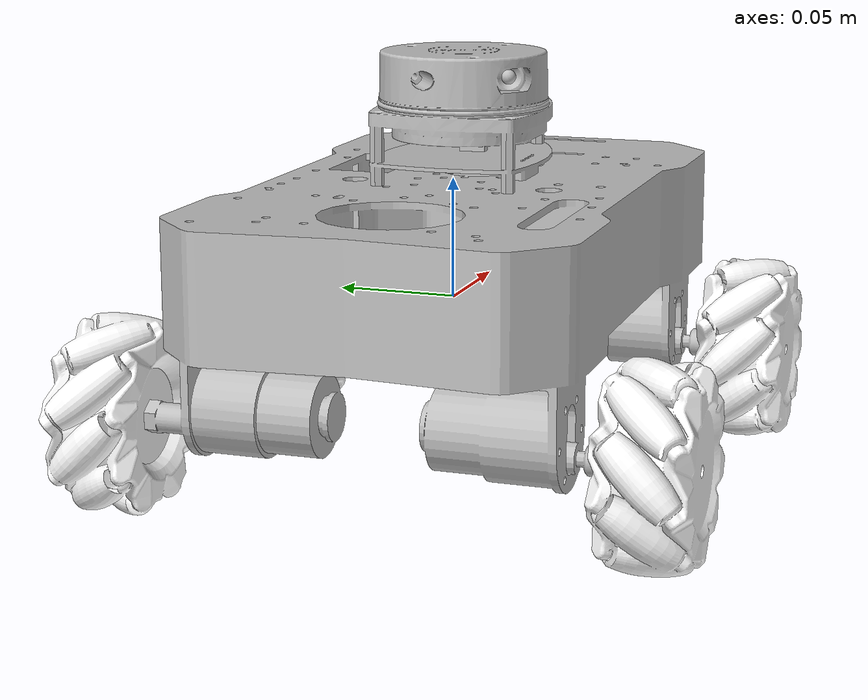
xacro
<?xml version="1.0"?>
<robot name="robmini" xmlns:xacro="http://www.ros.org/wiki/xacro">
    <!-- 添加参数声明 -->
    <xacro:arg name="prefix" default=""/>
    <xacro:arg name="use_mock" default="false"/>

    <!-- 获取参数值 -->
    <xacro:property name="prefix" value="$(arg prefix)" />
    <xacro:property name="use_mock" value="$(arg use_mock)"/>

    <!-- TF 前缀处理保持不变 -->
    <xacro:if value="${prefix == '/' or prefix == '' or prefix == ' '}">
        <xacro:property name="tf_prefix" value="" />
    </xacro:if>
    <xacro:unless value="${prefix == '/' or prefix == '' or prefix == ' '}">
        <xacro:property name="tf_prefix" value="${prefix}/" />
    </xacro:unless>

    <!-- 使用传统 find 语法 -->
    <xacro:include filename="$(find robmini_description)/urdf/robmini.urdf.xacro" />
    <xacro:include filename="$(find robmini_description)/urdf/lidar_gazebo.xacro" />
    <xacro:include filename="$(find robmini_description)/urdf/robmini.ros2_control.xacro" />
    <!-- 宏调用保持不变 -->
    <xacro:robmini_ros2_control
      use_mock_bool="${str(use_mock).lower() in ['true','1','yes','on']}"/>
</robot>

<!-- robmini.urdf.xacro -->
<robot xmlns:xacro="http://www.ros.org/wiki/xacro">

  <link
    name="${tf_prefix}base_link">
    <inertial>
      <origin
        xyz="0.00642718102494587 0.000182152311766697 0.0006273474275044"
        rpy="0 0 0" />
      <mass
        value="0.566394170985771" />
      <inertia
        ixx="0.00105406060554873"
        ixy="1.36846218301613E-05"
        ixz="-7.10562527190778E-06"
        iyy="0.00239067878191228"
        iyz="4.45402070926371E-07"
        izz="0.00328565602241862" />
    </inertial>
    <visual>
      <origin
        xyz="0 0 0"
        rpy="0 0 0" />
      <geometry>
        <mesh
          filename="package://robmini_description/meshes/base_link.STL" />
      </geometry>
      <material
        name="">
        <color
          rgba="0.752941176470588 0.752941176470588 0.752941176470588 1" />
      </material>
    </visual>
    <collision>
      <origin
        xyz="0 0 0"
        rpy="0 0 0" />
      <geometry>
        <mesh
          filename="package://robmini_description/meshes/base_link.STL" />
      </geometry>
    </collision>
  </link>
  <link
    name="${tf_prefix}front_left_wheel_link">
    <inertial>
      <origin
        xyz="-0.090148 -0.1069 0.045868"
        rpy="0 0 0" />
      <mass
        value="0.63948" />
      <inertia
        ixx="0.0025437"
        ixy="2.7123E-05"
        ixz="-0.00010496"
        iyy="0.0053311"
        iyz="1.0534E-05"
        izz="0.006151" />
    </inertial>
    <visual>
      <origin
        xyz="0 0 0"
        rpy="0 0 0" />
      <geometry>
        <mesh
          filename="package://robmini_description/meshes/left_front_wheel_link.STL" />
      </geometry>
      <material
        name="">
        <color
          rgba="1 1 1 1" />
      </material>
    </visual>
    <collision>
      <origin
        xyz="0 0 0"
        rpy="0 0 0" />
      <geometry>
        <mesh
          filename="package://robmini_description/meshes/left_front_wheel_link.STL" />
      </geometry>
    </collision>
  </link>
  <joint
    name="front_left_wheel_joint"
    type="continuous">
    <origin
      xyz="0.098716 0.107 -0.037"
      rpy="0 0 0" />
    <parent
      link="${tf_prefix}base_link" />
    <child
      link="${tf_prefix}front_left_wheel_link" />
    <axis
      xyz="0 1 0" />
  </joint>
  <link
    name="${tf_prefix}rear_left_wheel_link">
    <inertial>
      <origin
        xyz="0.094852 -0.1069 0.045868"
        rpy="0 0 0" />
      <mass
        value="0.63948" />
      <inertia
        ixx="0.0025437"
        ixy="2.7123E-05"
        ixz="-0.00010496"
        iyy="0.0053311"
        iyz="1.0534E-05"
        izz="0.006151" />
    </inertial>
    <visual>
      <origin
        xyz="0 0 0"
        rpy="0 0 0" />
      <geometry>
        <mesh
          filename="package://robmini_description/meshes/left_back_wheel_link.STL" />
      </geometry>
      <material
        name="">
        <color
          rgba="1 1 1 1" />
      </material>
    </visual>
    <collision>
      <origin
        xyz="0 0 0"
        rpy="0 0 0" />
      <geometry>
        <mesh
          filename="package://robmini_description/meshes/left_back_wheel_link.STL" />
      </geometry>
    </collision>
  </link>
  <joint
    name="rear_left_wheel_joint"
    type="continuous">
    <origin
      xyz="-0.086284 0.107 -0.037"
      rpy="0 0 0" />
    <parent
      link="${tf_prefix}base_link" />
    <child
      link="${tf_prefix}rear_left_wheel_link" />
    <axis
      xyz="0 1 0" />
  </joint>
  <link
    name="${tf_prefix}rear_right_wheel_link">
    <inertial>
      <origin
        xyz="0.094852 0.1071 0.045868"
        rpy="0 0 0" />
      <mass
        value="0.63948" />
      <inertia
        ixx="0.0025437"
        ixy="2.7123E-05"
        ixz="-0.00010496"
        iyy="0.0053311"
        iyz="1.0534E-05"
        izz="0.006151" />
    </inertial>
    <visual>
      <origin
        xyz="0 0 0"
        rpy="0 0 0" />
      <geometry>
        <mesh
          filename="package://robmini_description/meshes/right_back_wheel_link.STL" />
      </geometry>
      <material
        name="">
        <color
          rgba="1 1 1 1" />
      </material>
    </visual>
    <collision>
      <origin
        xyz="0 0 0"
        rpy="0 0 0" />
      <geometry>
        <mesh
          filename="package://robmini_description/meshes/right_back_wheel_link.STL" />
      </geometry>
    </collision>
  </link>
  <joint
    name="rear_right_wheel_joint"
    type="continuous">
    <origin
      xyz="-0.086284 -0.107 -0.037"
      rpy="0 0 0" />
    <parent
      link="${tf_prefix}base_link" />
    <child
      link="${tf_prefix}rear_right_wheel_link" />
    <axis
      xyz="0 1 0" />
  </joint>
  <link
    name="${tf_prefix}front_right_wheel_link">
    <inertial>
      <origin
        xyz="-0.090148 0.1071 0.045868"
        rpy="0 0 0" />
      <mass
        value="0.63948" />
      <inertia
        ixx="0.0025437"
        ixy="2.7123E-05"
        ixz="-0.00010496"
        iyy="0.0053311"
        iyz="1.0534E-05"
        izz="0.006151" />
    </inertial>
    <visual>
      <origin
        xyz="0 0 0"
        rpy="0 0 0" />
      <geometry>
        <mesh
          filename="package://robmini_description/meshes/right_front_wheel_link.STL" />
      </geometry>
      <material
        name="">
        <color
          rgba="1 1 1 1" />
      </material>
    </visual>
    <collision>
      <origin
        xyz="0 0 0"
        rpy="0 0 0" />
      <geometry>
        <mesh
          filename="package://robmini_description/meshes/right_front_wheel_link.STL" />
      </geometry>
    </collision>
  </link>
  <joint
    name="front_right_wheel_joint"
    type="continuous">
    <origin
      xyz="0.098716 -0.107 -0.037"
      rpy="0 0 0" />
    <parent
      link="${tf_prefix}base_link" />
    <child
      link="${tf_prefix}front_right_wheel_link" />
    <axis
      xyz="0 1 0" />
  </joint>
  <link
    name="${tf_prefix}laser">
    <inertial>
      <origin
        xyz="0.01206 -0.00053201 -0.0083649"
        rpy="0 0 0" />
      <mass
        value="0.073085" />
      <inertia
        ixx="1.9581E-05"
        ixy="-1.04E-07"
        ixz="-4.284E-07"
        iyy="2.4125E-05"
        iyz="9.3841E-09"
        izz="4.1419E-05" />
    </inertial>
    <visual>
      <origin
        xyz="0 0 0"
        rpy="0 0 0" />
      <geometry>
        <mesh
          filename="package://robmini_description/meshes/lidar_link.STL" />
      </geometry>
      <material
        name="">
        <color
          rgba="0.75294 0.75294 0.75294 1" />
      </material>
    </visual>
    <collision>
      <origin
        xyz="0 0 0"
        rpy="0 0 0" />
      <geometry>
        <mesh
          filename="package://robmini_description/meshes/lidar_link.STL" />
      </geometry>
    </collision>
  </link>
  <joint
    name="lidar_joint"
    type="fixed">
    <origin
      xyz="0.013095 0 0.0811"
      rpy="0 0 0" />
    <parent
      link="${tf_prefix}base_link" />
    <child
      link="${tf_prefix}laser" />
    <axis
      xyz="0 0 0" />
  </joint>

  <gazebo reference="${tf_prefix}base_link">
    <material>Gazebo/Grey</material>
  </gazebo>
  <gazebo reference="${tf_prefix}front_left_wheel_link">
    <collision>
        <surface>
        <friction>
            <ode>
            <mu>1.5</mu>
            <mu2>1.2</mu2>
            <fdir1>1 -1 0</fdir1>
            </ode>
        </friction>
        </surface>
    </collision>
  </gazebo>
  <gazebo reference="${tf_prefix}rear_left_wheel_link">
    <collision>
        <surface>
        <friction>
            <ode>
            <mu>1.5</mu>
            <mu2>1.2</mu2>
            <fdir1>1 1 0</fdir1>
            </ode>
        </friction>
        </surface>
    </collision>
  </gazebo>
  <gazebo reference="${tf_prefix}front_right_wheel_link">
    <collision>
        <surface>
        <friction>
            <ode>
            <mu>1.5</mu>
            <mu2>1.2</mu2>
            <fdir1>1 1 0</fdir1>
            </ode>
        </friction>
        </surface>
    </collision>
  </gazebo>
  <gazebo reference="${tf_prefix}rear_right_wheel_link">
    <collision>
        <surface>
        <friction>
            <ode>
            <mu>1.5</mu>
            <mu2>1.2</mu2>
            <fdir1>1 -1 0</fdir1>
            </ode>
        </friction>
        </surface>
    </collision>
  </gazebo>

</robot>
